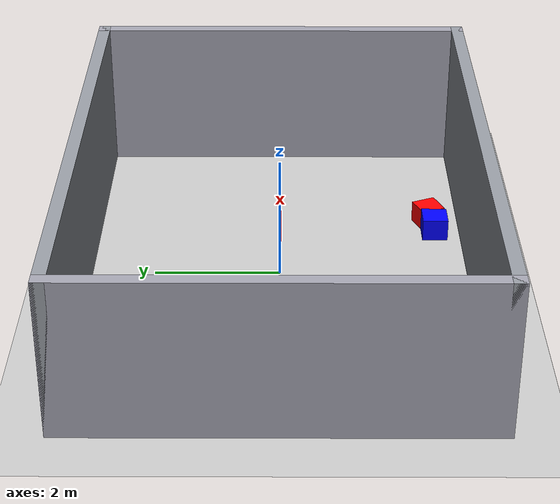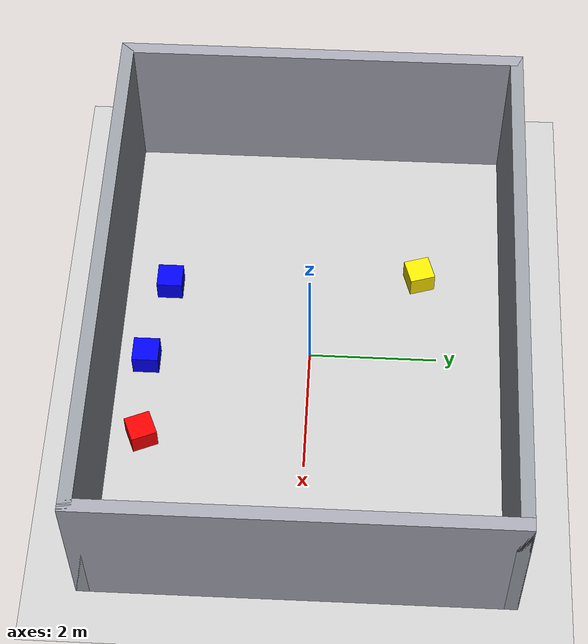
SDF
<sdf version="1.6">
 <world name="warehouse_aws_semantic">
  <plugin filename="gz-sim-physics-system" name="gz::sim::systems::Physics"/>
  <plugin filename="gz-sim-user-commands-system" name="gz::sim::systems::UserCommands"/>
  <plugin filename="gz-sim-scene-broadcaster-system" name="gz::sim::systems::SceneBroadcaster"/>
  <plugin filename="gz-sim-sensors-system" name="gz::sim::systems::Sensors">
   <render_engine>ogre2</render_engine>
  </plugin>
  <plugin filename="gz-sim-imu-system" name="gz::sim::systems::Imu"/>
  <light name="sun" type="directional">
   <cast_shadows>false</cast_shadows>
   <pose>0 0 10 0 0 0</pose>
   <diffuse>0.8 0.8 0.8 1</diffuse>
   <specular>0.2 0.2 0.2 1</specular>
   <attenuation>
    <range>1000</range>
    <constant>0.9</constant>
    <linear>0.01</linear>
    <quadratic>0.001</quadratic>
   </attenuation>
   <direction>-0.5 0.1 -0.9</direction>
  </light>
  <model name="ground_plane">
   <static>true</static>
   <link name="link">
    <collision name="collision">
     <geometry><plane><normal>0 0 1</normal><size>100 100</size></plane></geometry>
    </collision>
    <visual name="visual">
     <geometry><plane><normal>0 0 1</normal><size>100 100</size></plane></geometry>
     <material>
      <ambient>0.8 0.8 0.8 1</ambient>
      <diffuse>0.8 0.8 0.8 1</diffuse>
      <specular>0.8 0.8 0.8 1</specular>
     </material>
    </visual>
   </link>
  </model>
  <physics name="default_physics" type="dart">
   <max_step_size>0.001</max_step_size>
   <real_time_factor>1.0</real_time_factor>
  </physics>
  <scene><ambient>0.4 0.4 0.4 1</ambient><background>0.7 0.75 0.8 1</background><shadows>false</shadows></scene>
  <model name="wall_east">
   <static>true</static>
   <pose>4.1 0 1.25 0 0 0</pose>
   <link name="link">
    <collision name="collision"><geometry><box><size>0.2 6.4 2.5</size></box></geometry></collision>
    <visual name="visual">
     <geometry><box><size>0.2 6.4 2.5</size></box></geometry>
     <material><ambient>0.55 0.55 0.58 1</ambient><diffuse>0.65 0.65 0.7 1</diffuse></material>
    </visual>
   </link>
  </model>
  <model name="wall_west">
   <static>true</static>
   <pose>-4.1 0 1.25 0 0 0</pose>
   <link name="link">
    <collision name="collision"><geometry><box><size>0.2 6.4 2.5</size></box></geometry></collision>
    <visual name="visual">
     <geometry><box><size>0.2 6.4 2.5</size></box></geometry>
     <material><ambient>0.55 0.55 0.58 1</ambient><diffuse>0.65 0.65 0.7 1</diffuse></material>
    </visual>
   </link>
  </model>
  <model name="wall_north">
   <static>true</static>
   <pose>0 3.1 1.25 0 0 0</pose>
   <link name="link">
    <collision name="collision"><geometry><box><size>8.4 0.2 2.5</size></box></geometry></collision>
    <visual name="visual">
     <geometry><box><size>8.4 0.2 2.5</size></box></geometry>
     <material><ambient>0.5 0.52 0.55 1</ambient><diffuse>0.6 0.62 0.65 1</diffuse></material>
    </visual>
   </link>
  </model>
  <model name="wall_south">
   <static>true</static>
   <pose>0 -3.1 1.25 0 0 0</pose>
   <link name="link">
    <collision name="collision"><geometry><box><size>8.4 0.2 2.5</size></box></geometry></collision>
    <visual name="visual">
     <geometry><box><size>8.4 0.2 2.5</size></box></geometry>
     <material><ambient>0.5 0.52 0.55 1</ambient><diffuse>0.6 0.62 0.65 1</diffuse></material>
    </visual>
   </link>
  </model>
  <include><uri>model://box_blue</uri><name>box_blue_sofa</name><pose>0.5 -2.49 0.44 0 0 0</pose></include>
  <include><uri>model://box_blue</uri><name>box_blue_floor</name><pose>-1.2 -2.3 0 0 0 0</pose></include>
  <include><uri>model://box_red</uri><name>box_red</name><pose>1.6 -2.5 0 0 0 0.4</pose></include>
  <include><uri>model://box_yellow</uri><name>box_yellow</name><pose>-1.5 1.7 0 0 0 0.3</pose></include>
 </world>
</sdf>

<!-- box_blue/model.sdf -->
<sdf version="1.6">
  <model name="box_blue">
    <static>true</static>
    <link name="link">
      <pose>0 0 0.175 0 0 0</pose>

      <collision name="collision">
        <geometry>
          <box><size>0.4 0.4 0.35</size></box>
        </geometry>
      </collision>

      <visual name="visual">
        <geometry>
          <box><size>0.4 0.4 0.35</size></box>
        </geometry>
        <material>
          <ambient>0 0 1 1</ambient>
          <diffuse>0 0 1 1</diffuse>
          <specular>0.1 0.1 0.1 1</specular>
        </material>
      </visual>

    </link>
  </model>
</sdf>

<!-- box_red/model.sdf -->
<sdf version="1.6">
  <model name="box_red">
    <static>true</static>
    <link name="link">
      <pose>0 0 0.175 0 0 0</pose>

      <collision name="collision">
        <geometry>
          <box><size>0.4 0.4 0.35</size></box>
        </geometry>
      </collision>

      <visual name="visual">
        <geometry>
          <box><size>0.4 0.4 0.35</size></box>
        </geometry>
        <material>
          <ambient>1 0 0 1</ambient>
          <diffuse>1 0 0 1</diffuse>
          <specular>0.1 0.1 0.1 1</specular>
        </material>
      </visual>

    </link>
  </model>
</sdf>

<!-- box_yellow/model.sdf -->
<sdf version="1.6">
  <model name="box_yellow">
    <static>true</static>
    <link name="link">
      <pose>0 0 0.175 0 0 0</pose>

      <collision name="collision">
        <geometry>
          <box><size>0.4 0.4 0.35</size></box>
        </geometry>
      </collision>

      <visual name="visual">
        <geometry>
          <box><size>0.4 0.4 0.35</size></box>
        </geometry>
        <material>
          <ambient>1 0.9 0 1</ambient>
          <diffuse>1 0.9 0 1</diffuse>
          <specular>0.1 0.1 0.1 1</specular>
        </material>
      </visual>

    </link>
  </model>
</sdf>
